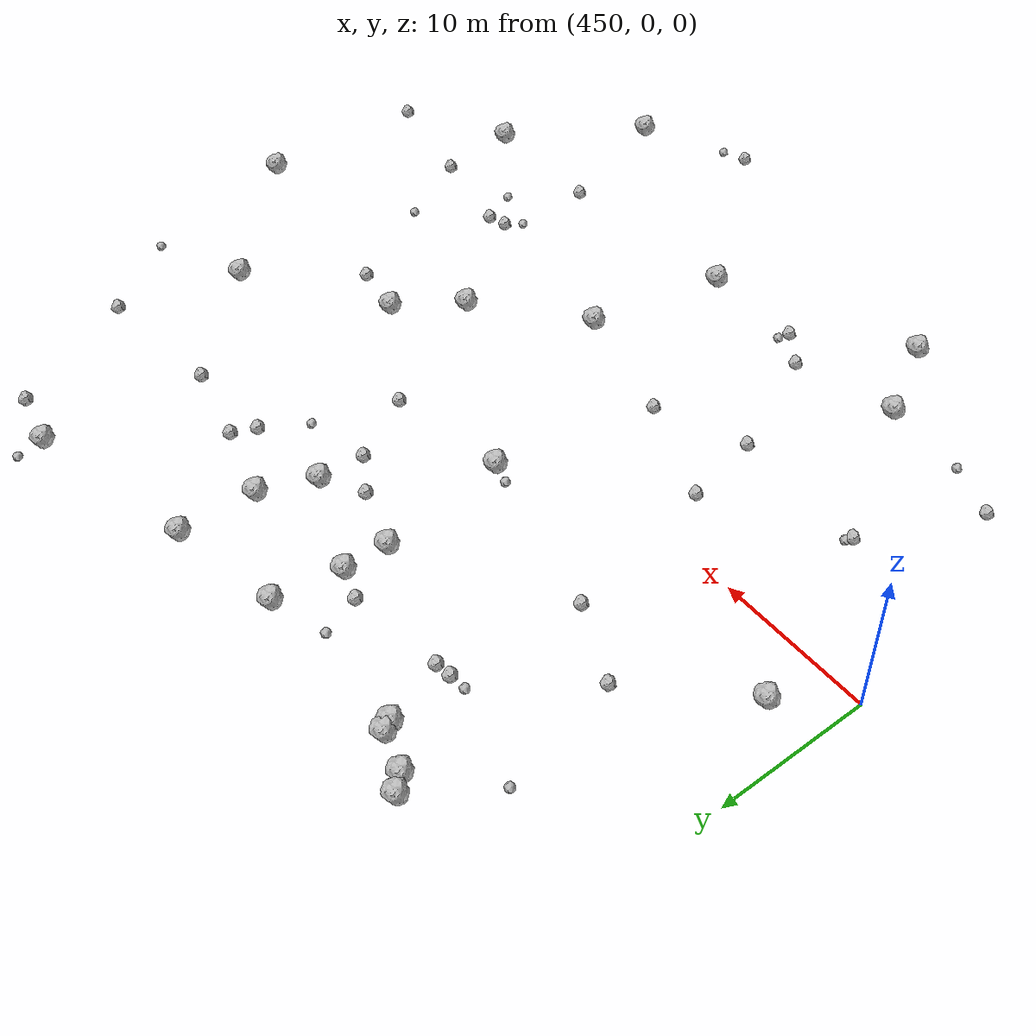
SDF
<sdf version="1.6">
 <world name="default">
  <include><uri>model://sun</uri></include>
  <model name="rock1_12_4">
   <include><uri>model://rock1</uri><pose>482.22984056321127 21.834701901093837 0.5 0 0 0</pose></include>
  </model>
  <model name="rock1_12_5">
   <include><uri>model://rock1</uri><pose>464.3143054911787 19.96932685354654 0.5 0 0 0</pose></include>
  </model>
  <model name="rock1_12_6">
   <include><uri>model://rock1</uri><pose>466.60238807359445 -22.61526150147408 0.5 0 0 0</pose></include>
  </model>
  <model name="rock1_12_7">
   <include><uri>model://rock1</uri><pose>499.25354105485826 6.909585735026177 0.5 0 0 0</pose></include>
  </model>
  <model name="rock1_12_8">
   <include><uri>model://rock1</uri><pose>500.306167467161 -16.266103869854664 0.5 0 0 0</pose></include>
  </model>
  <model name="rock1_12_9">
   <include><uri>model://rock1</uri><pose>481.2088938102021 -8.34453236892379 0.5 0 0 0</pose></include>
  </model>
  <model name="rock1_12_10">
   <include><uri>model://rock1</uri><pose>463.81465839736455 -17.358531931649033 0.5 0 0 0</pose></include>
  </model>
  <model name="rock1_12_11">
   <include><uri>model://rock1</uri><pose>479.333696732186 -17.353019503406806 0.5 0 0 0</pose></include>
  </model>
  <model name="rock1_12_12">
   <include><uri>model://rock1</uri><pose>482.1167100282252 16.73520004175394 0.5 0 0 0</pose></include>
  </model>
  <model name="rock1_12_13">
   <include><uri>model://rock1</uri><pose>453.3264379298289 3.693945634646269 0.5 0 0 0</pose></include>
  </model>
  <model name="rock1_12_14">
   <include><uri>model://rock1</uri><pose>461.49965249662506 21.374042485123468 0.5 0 0 0</pose></include>
  </model>
  <model name="rock1_12_15">
   <include><uri>model://rock1</uri><pose>480.7119342098615 13.231301876345505 0.5 0 0 0</pose></include>
  </model>
  <model name="rock1_12_16">
   <include><uri>model://rock1</uri><pose>487.66618927875265 -3.0061757619787457 0.5 0 0 0</pose></include>
  </model>
  <model name="rock1_12_17">
   <include><uri>model://rock1</uri><pose>474.1092461951917 13.086042382938643 0.5 0 0 0</pose></include>
  </model>
  <model name="rock1_12_18">
   <include><uri>model://rock1</uri><pose>460.6090990079224 22.317955673171873 0.5 0 0 0</pose></include>
  </model>
  <model name="rock1_12_19">
   <include><uri>model://rock1</uri><pose>494.74276600801943 -24.79734039836549 0.5 0 0 0</pose></include>
  </model>
  <model name="rock1_12_20">
   <include><uri>model://rock1</uri><pose>474.8305767595206 20.448823679014673 0.5 0 0 0</pose></include>
  </model>
  <model name="rock1_12_21">
   <include><uri>model://rock1</uri><pose>474.13910891849235 16.035409377663058 0.5 0 0 0</pose></include>
  </model>
  <model name="rock1_12_22">
   <include><uri>model://rock1</uri><pose>493.53384535090413 24.421557572875372 0.5 0 0 0</pose></include>
  </model>
  <model name="rock1_12_23">
   <include><uri>model://rock1</uri><pose>507.43597404792837 -1.3444161472586842 0.5 0 0 0</pose></include>
  </model>
  <model name="rock1_12_24">
   <include><uri>model://rock1</uri><pose>490.46290722468973 1.0408275512453216 0.5 0 0 0</pose></include>
  </model>
  <model name="rock1_12_25">
   <include><uri>model://rock1</uri><pose>475.2185695178104 4.419964706540988 0.5 0 0 0</pose></include>
  </model>
  <model name="rock1_12_26">
   <include><uri>model://rock1</uri><pose>463.9863436166339 20.619402793901862 0.5 0 0 0</pose></include>
  </model>
  <model name="rock2_12_0">
   <include><uri>model://rock2</uri><pose>471.99121878831033 16.731016962572426 0.3 0 0 0</pose></include>
  </model>
  <model name="rock2_12_1">
   <include><uri>model://rock2</uri><pose>458.15223982271976 -7.899982611542008 0.3 0 0 0</pose></include>
  </model>
  <model name="rock2_12_2">
   <include><uri>model://rock2</uri><pose>464.0562013609526 7.229514010098207 0.3 0 0 0</pose></include>
  </model>
  <model name="rock2_12_3">
   <include><uri>model://rock2</uri><pose>470.3655110756467 -15.653331298545051 0.3 0 0 0</pose></include>
  </model>
  <model name="rock2_12_4">
   <include><uri>model://rock2</uri><pose>472.53855002239436 -17.27482691475481 0.3 0 0 0</pose></include>
  </model>
  <model name="rock2_12_5">
   <include><uri>model://rock2</uri><pose>493.81228293603493 0.4987025208153 0.3 0 0 0</pose></include>
  </model>
  <model name="rock2_12_6">
   <include><uri>model://rock2</uri><pose>459.10197236524584 9.578967779982747 0.3 0 0 0</pose></include>
  </model>
  <model name="rock2_12_7">
   <include><uri>model://rock2</uri><pose>487.00820758396736 15.33995402335789 0.3 0 0 0</pose></include>
  </model>
  <model name="rock2_12_8">
   <include><uri>model://rock2</uri><pose>464.6538068118645 15.787585914416802 0.3 0 0 0</pose></include>
  </model>
  <model name="rock2_12_9">
   <include><uri>model://rock2</uri><pose>487.4936945497054 -27.852412795073267 0.3 0 0 0</pose></include>
  </model>
  <model name="rock2_12_10">
   <include><uri>model://rock2</uri><pose>501.1041373099353 14.94921871758541 0.3 0 0 0</pose></include>
  </model>
  <model name="rock2_12_11">
   <include><uri>model://rock2</uri><pose>478.0329487215745 11.746295297566448 0.3 0 0 0</pose></include>
  </model>
  <model name="rock2_12_12">
   <include><uri>model://rock2</uri><pose>492.3261912545599 -9.946837544823818 0.3 0 0 0</pose></include>
  </model>
  <model name="rock2_12_13">
   <include><uri>model://rock2</uri><pose>454.7231124825034 -15.31386093519889 0.3 0 0 0</pose></include>
  </model>
  <model name="rock2_12_14">
   <include><uri>model://rock2</uri><pose>482.9740648857852 5.736184991755401 0.3 0 0 0</pose></include>
  </model>
  <model name="rock2_12_15">
   <include><uri>model://rock2</uri><pose>497.1662023004897 23.611656206394535 0.3 0 0 0</pose></include>
  </model>
  <model name="rock2_12_16">
   <include><uri>model://rock2</uri><pose>506.87940608472695 -12.475376450016679 0.3 0 0 0</pose></include>
  </model>
  <model name="rock2_12_17">
   <include><uri>model://rock2</uri><pose>486.3447176470944 13.812177237202718 0.3 0 0 0</pose></include>
  </model>
  <model name="rock2_12_18">
   <include><uri>model://rock2</uri><pose>465.7054375075849 15.915700256747769 0.3 0 0 0</pose></include>
  </model>
  <model name="rock2_12_19">
   <include><uri>model://rock2</uri><pose>492.3488100102568 14.07464666590915 0.3 0 0 0</pose></include>
  </model>
  <model name="rock2_12_20">
   <include><uri>model://rock2</uri><pose>493.55484131061854 -9.615314594929899 0.3 0 0 0</pose></include>
  </model>
  <model name="rock2_12_21">
   <include><uri>model://rock2</uri><pose>472.9499381144875 -6.088004655904417 0.3 0 0 0</pose></include>
  </model>
  <model name="rock2_12_22">
   <include><uri>model://rock2</uri><pose>499.6760257446073 -10.939849193057714 0.3 0 0 0</pose></include>
  </model>
  <model name="rock2_12_23">
   <include><uri>model://rock2</uri><pose>466.12863680278696 -3.2448043525442927 0.3 0 0 0</pose></include>
  </model>
  <model name="rock2_12_24">
   <include><uri>model://rock2</uri><pose>467.15033120953757 -8.360845944499928 0.3 0 0 0</pose></include>
  </model>
  <model name="rock2_12_25">
   <include><uri>model://rock2</uri><pose>480.5346862256382 10.157749558102878 0.3 0 0 0</pose></include>
  </model>
  <model name="rock2_12_26">
   <include><uri>model://rock2</uri><pose>491.8030436922211 -16.172558491165898 0.3 0 0 0</pose></include>
  </model>
  <model name="rock3_12_0">
   <include><uri>model://rock3</uri><pose>484.68321402489653 10.991377716326078 0.2 0 0 0</pose></include>
  </model>
  <model name="rock3_12_1">
   <include><uri>model://rock3</uri><pose>497.20902874588904 -5.986001853157948 0.2 0 0 0</pose></include>
  </model>
  <model name="rock3_12_2">
   <include><uri>model://rock3</uri><pose>457.34885678422904 17.54096293640807 0.2 0 0 0</pose></include>
  </model>
  <model name="rock3_12_3">
   <include><uri>model://rock3</uri><pose>494.57065999320037 -12.057095284174228 0.2 0 0 0</pose></include>
  </model>
  <model name="rock3_12_4">
   <include><uri>model://rock3</uri><pose>463.523202422976 15.625981843419403 0.2 0 0 0</pose></include>
  </model>
  <model name="rock3_12_5">
   <include><uri>model://rock3</uri><pose>458.1438361936807 -16.76341422984742 0.2 0 0 0</pose></include>
  </model>
  <model name="rock3_12_6">
   <include><uri>model://rock3</uri><pose>473.7171123464929 4.78268806406556 0.2 0 0 0</pose></include>
  </model>
  <model name="rock3_12_7">
   <include><uri>model://rock3</uri><pose>493.1613612081903 26.20248269801295 0.2 0 0 0</pose></include>
  </model>
  <model name="rock3_12_8">
   <include><uri>model://rock3</uri><pose>471.03834762716804 19.28408189554247 0.2 0 0 0</pose></include>
  </model>
  <model name="rock3_12_9">
   <include><uri>model://rock3</uri><pose>472.72341270619467 -16.543148710314114 0.2 0 0 0</pose></include>
  </model>
  <model name="rock3_12_10">
   <include><uri>model://rock3</uri><pose>504.8006864200012 9.530588910074506 0.2 0 0 0</pose></include>
  </model>
  <model name="rock3_12_11">
   <include><uri>model://rock3</uri><pose>491.6276724967816 -11.031318033733086 0.2 0 0 0</pose></include>
  </model>
  <model name="rock3_12_12">
   <include><uri>model://rock3</uri><pose>458.3407642325202 -7.534231974617352 0.2 0 0 0</pose></include>
  </model>
  <model name="rock3_12_13">
   <include><uri>model://rock3</uri><pose>489.05760444014203 -27.343207433150457 0.2 0 0 0</pose></include>
  </model>
 </world>
</sdf>
